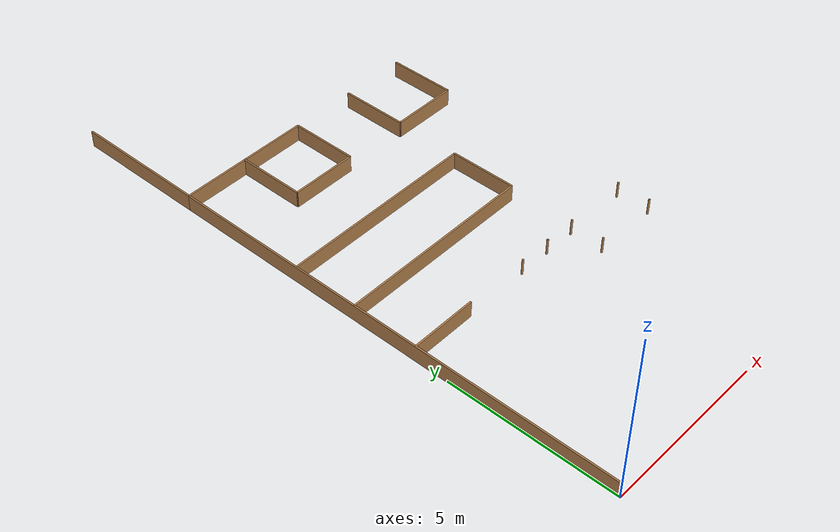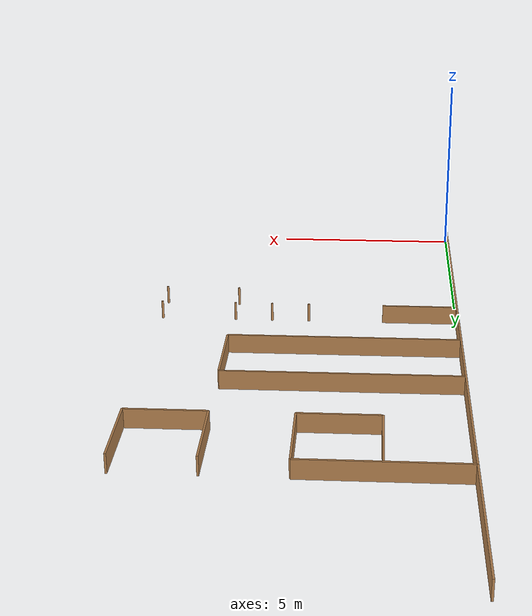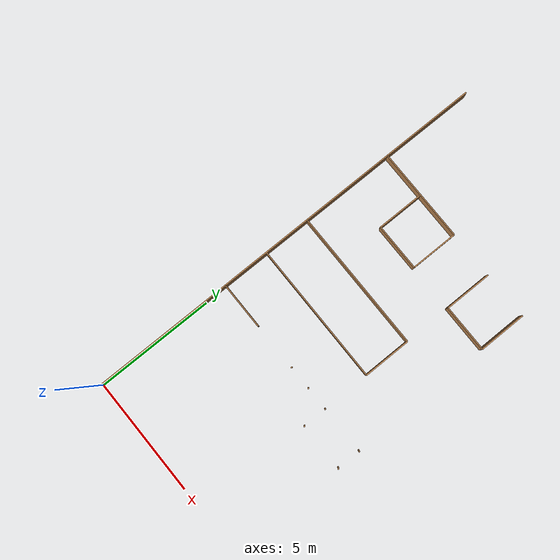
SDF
<sdf version="1.6">
 <world name="default">
  <model name="cylinder_20">
   <pose>8.0 5.0 0.25 0 0 0</pose>
   <link name="link">
    <inertial>
     <mass>1</mass>
     <inertia><ixx>0</ixx><ixy>0</ixy><ixz>0</ixz><iyy>0</iyy><iyz>0</iyz><izz>0</izz></inertia>
    </inertial>
    <collision name="collision">
     <geometry><cylinder><radius>0.03</radius><length>0.5</length></cylinder></geometry>
    </collision>
    <visual name="visual">
     <geometry><cylinder><radius>0.03</radius><length>0.5</length></cylinder></geometry>
     <material>
      <script><name>Gazebo/WoodFloor</name><uri>file://media/materials/scripts/gazebo.material</uri></script>
     </material>
    </visual>
   </link>
   <static>1</static>
  </model>
  <model name="cylinder_17">
   <pose>8.0 6.0 0.25 0 0 0</pose>
   <link name="link">
    <inertial>
     <mass>1</mass>
     <inertia><ixx>0</ixx><ixy>0</ixy><ixz>0</ixz><iyy>0</iyy><iyz>0</iyz><izz>0</izz></inertia>
    </inertial>
    <collision name="collision">
     <geometry><cylinder><radius>0.03</radius><length>0.5</length></cylinder></geometry>
    </collision>
    <visual name="visual">
     <geometry><cylinder><radius>0.03</radius><length>0.5</length></cylinder></geometry>
     <material>
      <script><name>Gazebo/WoodFloor</name><uri>file://media/materials/scripts/gazebo.material</uri></script>
     </material>
    </visual>
   </link>
   <static>1</static>
  </model>
  <model name="cylinder_5">
   <pose>6.0 5.0 0.25 0 0 0</pose>
   <link name="link">
    <inertial>
     <mass>1</mass>
     <inertia><ixx>0</ixx><ixy>0</ixy><ixz>0</ixz><iyy>0</iyy><iyz>0</iyz><izz>0</izz></inertia>
    </inertial>
    <collision name="collision">
     <geometry><cylinder><radius>0.03</radius><length>0.5</length></cylinder></geometry>
    </collision>
    <visual name="visual">
     <geometry><cylinder><radius>0.03</radius><length>0.5</length></cylinder></geometry>
     <material>
      <script><name>Gazebo/WoodFloor</name><uri>file://media/materials/scripts/gazebo.material</uri></script>
     </material>
    </visual>
   </link>
   <static>1</static>
  </model>
  <model name="cylinder_3">
   <pose>6.0 6.0 0.25 0 0 0</pose>
   <link name="link">
    <inertial>
     <mass>1</mass>
     <inertia><ixx>0</ixx><ixy>0</ixy><ixz>0</ixz><iyy>0</iyy><iyz>0</iyz><izz>0</izz></inertia>
    </inertial>
    <collision name="collision">
     <geometry><cylinder><radius>0.03</radius><length>0.5</length></cylinder></geometry>
    </collision>
    <visual name="visual">
     <geometry><cylinder><radius>0.03</radius><length>0.5</length></cylinder></geometry>
     <material>
      <script><name>Gazebo/WoodFloor</name><uri>file://media/materials/scripts/gazebo.material</uri></script>
     </material>
    </visual>
   </link>
   <static>1</static>
  </model>
  <model name="cylinder_2">
   <pose>5.0 6.0 0.25 0 0 0</pose>
   <link name="link">
    <inertial>
     <mass>1</mass>
     <inertia><ixx>0</ixx><ixy>0</ixy><ixz>0</ixz><iyy>0</iyy><iyz>0</iyz><izz>0</izz></inertia>
    </inertial>
    <collision name="collision">
     <geometry><cylinder><radius>0.03</radius><length>0.5</length></cylinder></geometry>
    </collision>
    <visual name="visual">
     <geometry><cylinder><radius>0.03</radius><length>0.5</length></cylinder></geometry>
     <material>
      <script><name>Gazebo/WoodFloor</name><uri>file://media/materials/scripts/gazebo.material</uri></script>
     </material>
    </visual>
   </link>
   <static>1</static>
  </model>
  <model name="cylinder_1">
   <pose>4.0 6.0 0.25 0 0 0</pose>
   <link name="link">
    <inertial>
     <mass>1</mass>
     <inertia><ixx>0</ixx><ixy>0</ixy><ixz>0</ixz><iyy>0</iyy><iyz>0</iyz><izz>0</izz></inertia>
    </inertial>
    <collision name="collision">
     <geometry><cylinder><radius>0.03</radius><length>0.5</length></cylinder></geometry>
    </collision>
    <visual name="visual">
     <geometry><cylinder><radius>0.03</radius><length>0.5</length></cylinder></geometry>
     <material>
      <script><name>Gazebo/WoodFloor</name><uri>file://media/materials/scripts/gazebo.material</uri></script>
     </material>
    </visual>
   </link>
   <static>1</static>
  </model>
  <model name="box_41">
   <pose>0.0 16.0 0.25 0 0 -1.5707963267948966</pose>
   <link name="link">
    <inertial>
     <mass>1</mass>
     <inertia><ixx>0</ixx><ixy>0</ixy><ixz>0</ixz><iyy>0</iyy><iyz>0</iyz><izz>0</izz></inertia>
    </inertial>
    <collision name="collision"><geometry><box><size>4.0 0.05 0.5</size></box></geometry></collision>
    <visual name="visual">
     <geometry><box><size>4.0 0.05 0.5</size></box></geometry>
     <material>
      <script><name>Gazebo/WoodFloor</name><uri>file://media/materials/scripts/gazebo.material</uri></script>
     </material>
    </visual>
   </link>
   <static>1</static>
  </model>
  <model name="box_37">
   <pose>8.0 13.0 0.25 0 0 -1.5707963267948966</pose>
   <link name="link">
    <inertial>
     <mass>1</mass>
     <inertia><ixx>0</ixx><ixy>0</ixy><ixz>0</ixz><iyy>0</iyy><iyz>0</iyz><izz>0</izz></inertia>
    </inertial>
    <collision name="collision"><geometry><box><size>2.0 0.05 0.5</size></box></geometry></collision>
    <visual name="visual">
     <geometry><box><size>2.0 0.05 0.5</size></box></geometry>
     <material>
      <script><name>Gazebo/WoodFloor</name><uri>file://media/materials/scripts/gazebo.material</uri></script>
     </material>
    </visual>
   </link>
   <static>1</static>
  </model>
  <model name="box_36">
   <pose>7.0 12.0 0.25 0 0 -3.141592653589793</pose>
   <link name="link">
    <inertial>
     <mass>1</mass>
     <inertia><ixx>0</ixx><ixy>0</ixy><ixz>0</ixz><iyy>0</iyy><iyz>0</iyz><izz>0</izz></inertia>
    </inertial>
    <collision name="collision"><geometry><box><size>2.0 0.05 0.5</size></box></geometry></collision>
    <visual name="visual">
     <geometry><box><size>2.0 0.05 0.5</size></box></geometry>
     <material>
      <script><name>Gazebo/WoodFloor</name><uri>file://media/materials/scripts/gazebo.material</uri></script>
     </material>
    </visual>
   </link>
   <static>1</static>
  </model>
  <model name="box_35">
   <pose>6.0 13.0 0.25 0 0 1.5707963267948966</pose>
   <link name="link">
    <inertial>
     <mass>1</mass>
     <inertia><ixx>0</ixx><ixy>0</ixy><ixz>0</ixz><iyy>0</iyy><iyz>0</iyz><izz>0</izz></inertia>
    </inertial>
    <collision name="collision"><geometry><box><size>2.0 0.05 0.5</size></box></geometry></collision>
    <visual name="visual">
     <geometry><box><size>2.0 0.05 0.5</size></box></geometry>
     <material>
      <script><name>Gazebo/WoodFloor</name><uri>file://media/materials/scripts/gazebo.material</uri></script>
     </material>
    </visual>
   </link>
   <static>1</static>
  </model>
  <model name="box_34">
   <pose>2.0 13.0 0.25 0 0 -1.5707963267948966</pose>
   <link name="link">
    <inertial>
     <mass>1</mass>
     <inertia><ixx>0</ixx><ixy>0</ixy><ixz>0</ixz><iyy>0</iyy><iyz>0</iyz><izz>0</izz></inertia>
    </inertial>
    <collision name="collision"><geometry><box><size>2.0 0.05 0.5</size></box></geometry></collision>
    <visual name="visual">
     <geometry><box><size>2.0 0.05 0.5</size></box></geometry>
     <material>
      <script><name>Gazebo/WoodFloor</name><uri>file://media/materials/scripts/gazebo.material</uri></script>
     </material>
    </visual>
   </link>
   <static>1</static>
  </model>
  <model name="box_33">
   <pose>3.0 12.0 0.25 0 0 -0.0</pose>
   <link name="link">
    <inertial>
     <mass>1</mass>
     <inertia><ixx>0</ixx><ixy>0</ixy><ixz>0</ixz><iyy>0</iyy><iyz>0</iyz><izz>0</izz></inertia>
    </inertial>
    <collision name="collision"><geometry><box><size>2.0 0.05 0.5</size></box></geometry></collision>
    <visual name="visual">
     <geometry><box><size>2.0 0.05 0.5</size></box></geometry>
     <material>
      <script><name>Gazebo/WoodFloor</name><uri>file://media/materials/scripts/gazebo.material</uri></script>
     </material>
    </visual>
   </link>
   <static>1</static>
  </model>
  <model name="box_32">
   <pose>4.0 13.0 0.25 0 0 1.5707963267948966</pose>
   <link name="link">
    <inertial>
     <mass>1</mass>
     <inertia><ixx>0</ixx><ixy>0</ixy><ixz>0</ixz><iyy>0</iyy><iyz>0</iyz><izz>0</izz></inertia>
    </inertial>
    <collision name="collision"><geometry><box><size>2.0 0.05 0.5</size></box></geometry></collision>
    <visual name="visual">
     <geometry><box><size>2.0 0.05 0.5</size></box></geometry>
     <material>
      <script><name>Gazebo/WoodFloor</name><uri>file://media/materials/scripts/gazebo.material</uri></script>
     </material>
    </visual>
   </link>
   <static>1</static>
  </model>
  <model name="box_29">
   <pose>1.0 6.0 0.25 0 0 -3.141592653589793</pose>
   <link name="link">
    <inertial>
     <mass>1</mass>
     <inertia><ixx>0</ixx><ixy>0</ixy><ixz>0</ixz><iyy>0</iyy><iyz>0</iyz><izz>0</izz></inertia>
    </inertial>
    <collision name="collision"><geometry><box><size>2.0 0.05 0.5</size></box></geometry></collision>
    <visual name="visual">
     <geometry><box><size>2.0 0.05 0.5</size></box></geometry>
     <material>
      <script><name>Gazebo/WoodFloor</name><uri>file://media/materials/scripts/gazebo.material</uri></script>
     </material>
    </visual>
   </link>
   <static>1</static>
  </model>
  <model name="box_28">
   <pose>3.0 10.0 0.25 0 0 -0.0</pose>
   <link name="link">
    <inertial>
     <mass>1</mass>
     <inertia><ixx>0</ixx><ixy>0</ixy><ixz>0</ixz><iyy>0</iyy><iyz>0</iyz><izz>0</izz></inertia>
    </inertial>
    <collision name="collision"><geometry><box><size>6.0 0.05 0.5</size></box></geometry></collision>
    <visual name="visual">
     <geometry><box><size>6.0 0.05 0.5</size></box></geometry>
     <material>
      <script><name>Gazebo/WoodFloor</name><uri>file://media/materials/scripts/gazebo.material</uri></script>
     </material>
    </visual>
   </link>
   <static>1</static>
  </model>
  <model name="box_27">
   <pose>6.0 9.0 0.25 0 0 -1.5707963267948966</pose>
   <link name="link">
    <inertial>
     <mass>1</mass>
     <inertia><ixx>0</ixx><ixy>0</ixy><ixz>0</ixz><iyy>0</iyy><iyz>0</iyz><izz>0</izz></inertia>
    </inertial>
    <collision name="collision"><geometry><box><size>2.0 0.05 0.5</size></box></geometry></collision>
    <visual name="visual">
     <geometry><box><size>2.0 0.05 0.5</size></box></geometry>
     <material>
      <script><name>Gazebo/WoodFloor</name><uri>file://media/materials/scripts/gazebo.material</uri></script>
     </material>
    </visual>
   </link>
   <static>1</static>
  </model>
  <model name="box_26">
   <pose>3.0 8.0 0.25 0 0 -3.141592653589793</pose>
   <link name="link">
    <inertial>
     <mass>1</mass>
     <inertia><ixx>0</ixx><ixy>0</ixy><ixz>0</ixz><iyy>0</iyy><iyz>0</iyz><izz>0</izz></inertia>
    </inertial>
    <collision name="collision"><geometry><box><size>6.0 0.05 0.5</size></box></geometry></collision>
    <visual name="visual">
     <geometry><box><size>6.0 0.05 0.5</size></box></geometry>
     <material>
      <script><name>Gazebo/WoodFloor</name><uri>file://media/materials/scripts/gazebo.material</uri></script>
     </material>
    </visual>
   </link>
   <static>1</static>
  </model>
  <model name="box_2">
   <pose>0.0 7.0 0.25 0 0 1.5707963267948966</pose>
   <link name="link">
    <inertial>
     <mass>1</mass>
     <inertia><ixx>0</ixx><ixy>0</ixy><ixz>0</ixz><iyy>0</iyy><iyz>0</iyz><izz>0</izz></inertia>
    </inertial>
    <collision name="collision"><geometry><box><size>14.0 0.05 0.5</size></box></geometry></collision>
    <visual name="visual">
     <geometry><box><size>14.0 0.05 0.5</size></box></geometry>
     <material>
      <script><name>Gazebo/WoodFloor</name><uri>file://media/materials/scripts/gazebo.material</uri></script>
     </material>
    </visual>
   </link>
   <static>1</static>
  </model>
  <model name="box_1">
   <pose>2.0 14.0 0.25 0 0 -0.0</pose>
   <link name="link">
    <inertial>
     <mass>1</mass>
     <inertia><ixx>0</ixx><ixy>0</ixy><ixz>0</ixz><iyy>0</iyy><iyz>0</iyz><izz>0</izz></inertia>
    </inertial>
    <collision name="collision"><geometry><box><size>4.0 0.05 0.5</size></box></geometry></collision>
    <visual name="visual">
     <geometry><box><size>4.0 0.05 0.5</size></box></geometry>
     <material>
      <script><name>Gazebo/WoodFloor</name><uri>file://media/materials/scripts/gazebo.material</uri></script>
     </material>
    </visual>
   </link>
   <static>1</static>
  </model>
 </world>
</sdf>
